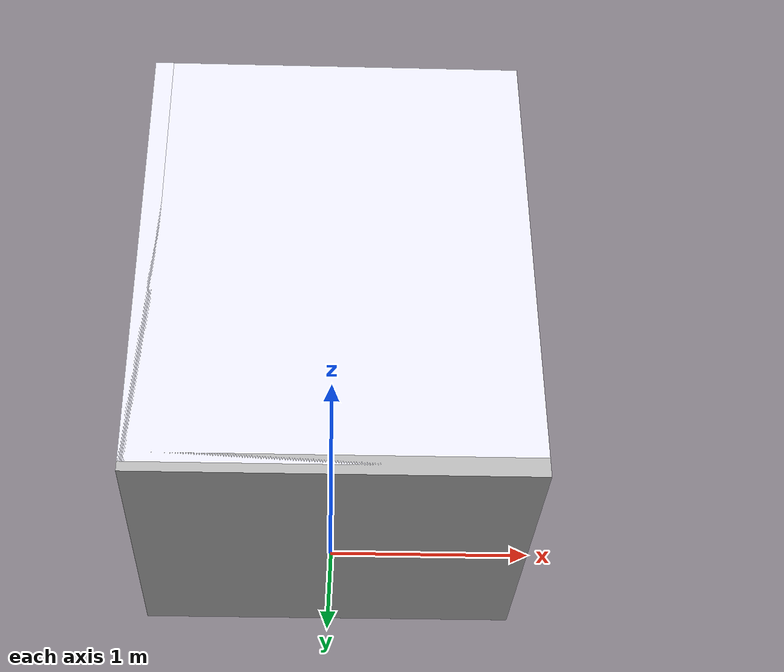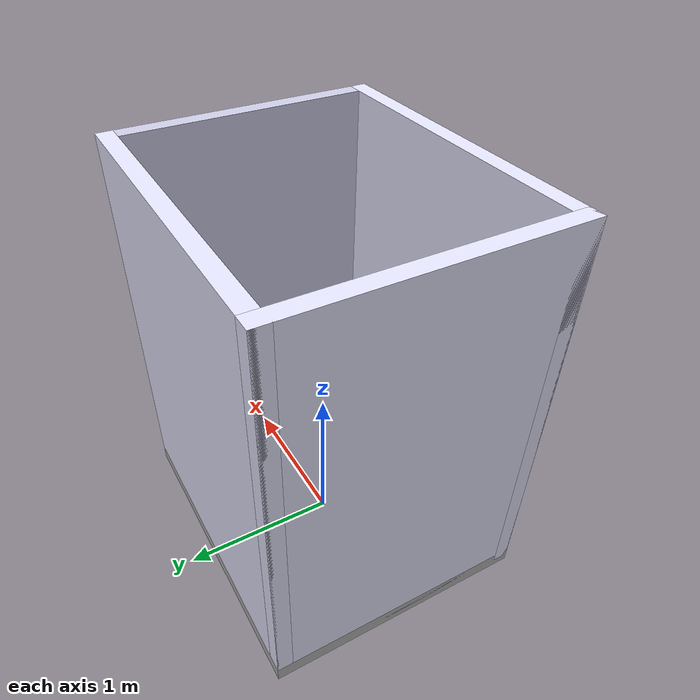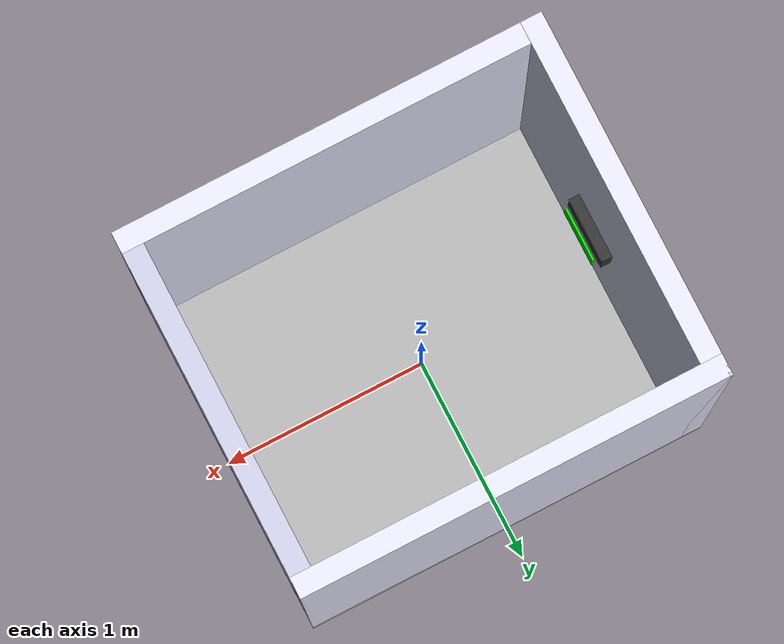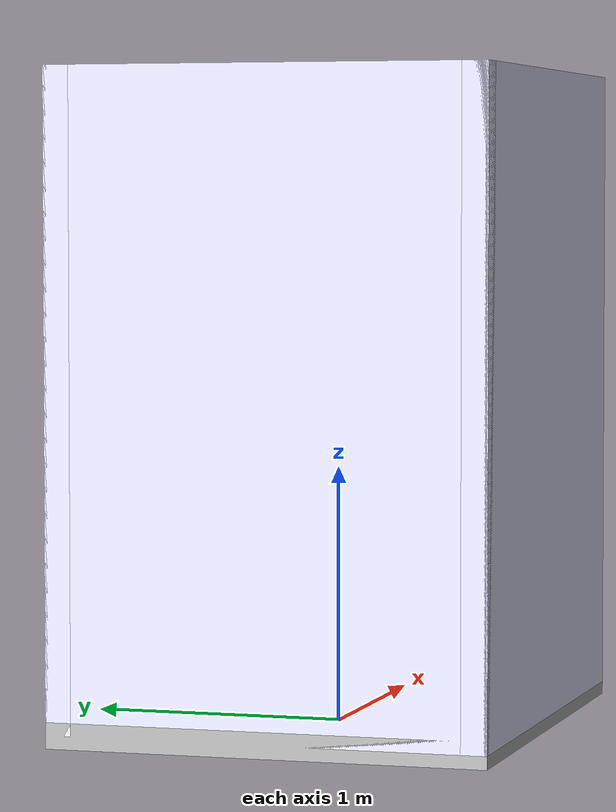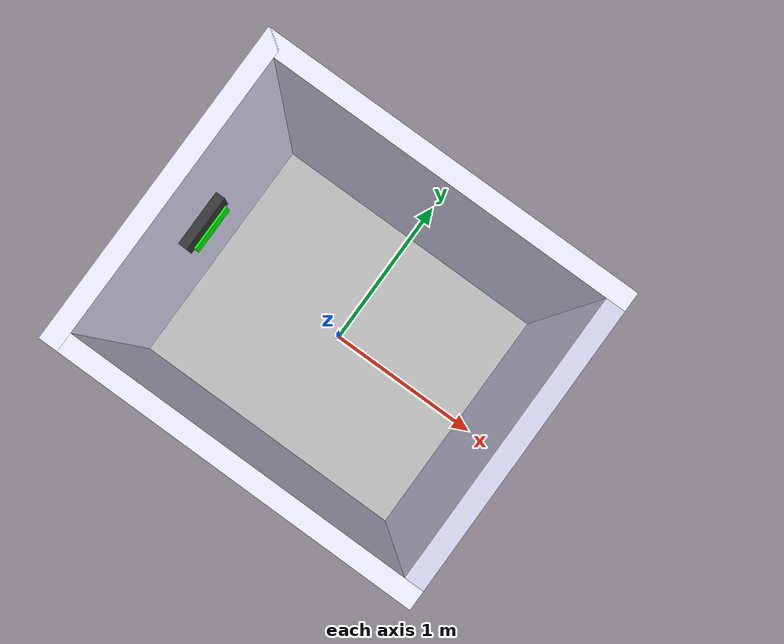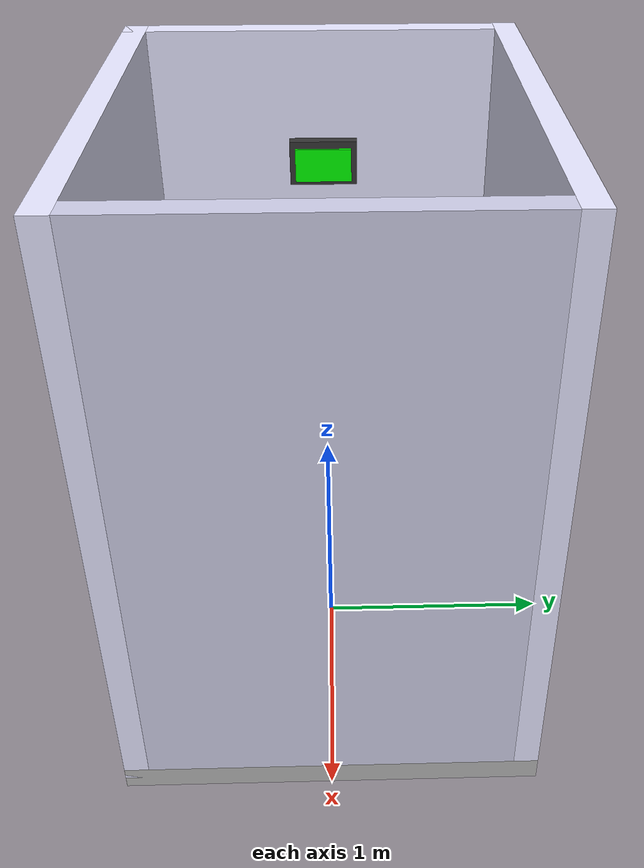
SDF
<?xml version="1.0"?>
<sdf version="1.7">
  <model name="elevator_car">
    <static>false</static>
    <pose>0 0 0 0 0 0</pose>

    <!-- Main Platform -->
    <link name="platform">
      <pose>0 0 0.05 0 0 0</pose>
      <gravity>false</gravity>
      <kinematic>true</kinematic>
      <inertial>
        <mass>500</mass>
        <inertia>
          <ixx>166.67</ixx>
          <ixy>0</ixy>
          <ixz>0</ixz>
          <iyy>208.33</iyy>
          <iyz>0</iyz>
          <izz>375</izz>
        </inertia>
      </inertial>
      <collision name="platform_collision">
        <geometry>
          <box>
            <size>2.0 1.7 0.1</size>
          </box>
        </geometry>
      </collision>
      <visual name="platform_visual">
        <geometry>
          <box>
            <size>2.0 1.7 0.1</size>
          </box>
        </geometry>
        <material>
          <ambient>0.5 0.5 0.5 1</ambient>
          <diffuse>0.7 0.7 0.7 1</diffuse>
          <specular>0.2 0.2 0.2 1</specular>
        </material>
      </visual>
    </link>

    <!-- Back Wall -->
    <link name="back_wall">
      <pose>-0.95 0 1.3 0 0 0</pose>
      <inertial>
        <mass>50</mass>
        <inertia>
          <ixx>20.83</ixx>
          <ixy>0</ixy>
          <ixz>0</ixz>
          <iyy>0.83</iyy>
          <iyz>0</iyz>
          <izz>20</izz>
        </inertia>
      </inertial>
      <collision name="back_wall_collision">
        <geometry>
          <box>
            <size>0.1 1.7 2.5</size>
          </box>
        </geometry>
      </collision>
      <visual name="back_wall_visual">
        <geometry>
          <box>
            <size>0.1 1.7 2.5</size>
          </box>
        </geometry>
        <material>
          <ambient>0.8 0.8 0.9 1</ambient>
          <diffuse>0.9 0.9 1.0 1</diffuse>
          <specular>0.3 0.3 0.3 1</specular>
        </material>
      </visual>
    </link>

    <!-- Left Wall -->
    <link name="left_wall">
      <pose>0 -0.8 1.3 0 0 0</pose>
      <inertial>
        <mass>50</mass>
        <inertia>
          <ixx>0.83</ixx>
          <ixy>0</ixy>
          <ixz>0</ixz>
          <iyy>21.67</iyy>
          <iyz>0</iyz>
          <izz>20.83</izz>
        </inertia>
      </inertial>
      <collision name="left_wall_collision">
        <geometry>
          <box>
            <size>2.0 0.1 2.5</size>
          </box>
        </geometry>
      </collision>
      <visual name="left_wall_visual">
        <geometry>
          <box>
            <size>2.0 0.1 2.5</size>
          </box>
        </geometry>
        <material>
          <ambient>0.8 0.8 0.9 1</ambient>
          <diffuse>0.9 0.9 1.0 1</diffuse>
          <specular>0.3 0.3 0.3 1</specular>
        </material>
      </visual>
    </link>

    <!-- Right Wall -->
    <link name="right_wall">
      <pose>0 0.8 1.3 0 0 0</pose>
      <inertial>
        <mass>50</mass>
        <inertia>
          <ixx>0.83</ixx>
          <ixy>0</ixy>
          <ixz>0</ixz>
          <iyy>21.67</iyy>
          <iyz>0</iyz>
          <izz>20.83</izz>
        </inertia>
      </inertial>
      <collision name="right_wall_collision">
        <geometry>
          <box>
            <size>2.0 0.1 2.5</size>
          </box>
        </geometry>
      </collision>
      <visual name="right_wall_visual">
        <geometry>
          <box>
            <size>2.0 0.1 2.5</size>
          </box>
        </geometry>
        <material>
          <ambient>0.8 0.8 0.9 1</ambient>
          <diffuse>0.9 0.9 1.0 1</diffuse>
          <specular>0.3 0.3 0.3 1</specular>
        </material>
      </visual>
    </link>

    <!-- Single Elevator Door -->
    <link name="elevator_door">
      <pose>0.95 0 1.3 0 0 0</pose>
      <inertial>
        <mass>30</mass>
        <inertia>
          <ixx>15.625</ixx>
          <ixy>0</ixy>
          <ixz>0</ixz>
          <iyy>0.3</iyy>
          <iyz>0</iyz>
          <izz>15.325</izz>
        </inertia>
      </inertial>
      <collision name="door_collision">
        <geometry>
          <box>
            <size>0.1 1.5 2.5</size>
          </box>
        </geometry>
      </collision>
      <visual name="door_visual">
        <geometry>
          <box>
            <size>0.1 1.5 2.5</size>
          </box>
        </geometry>
        <material>
          <ambient>0.7 0.7 0.8 1</ambient>
          <diffuse>0.8 0.8 0.9 1</diffuse>
          <specular>0.4 0.4 0.4 1</specular>
        </material>
      </visual>
    </link>

    <!-- Floor Display -->
    <link name="floor_display">
      <pose>-0.8 0 2.0 0 0 0</pose>
      <inertial>
        <mass>1</mass>
        <inertia>
          <ixx>0.01</ixx>
          <ixy>0</ixy>
          <ixz>0</ixz>
          <iyy>0.01</iyy>
          <iyz>0</iyz>
          <izz>0.01</izz>
        </inertia>
      </inertial>
      <collision name="display_collision">
        <geometry>
          <box>
            <size>0.05 0.3 0.2</size>
          </box>
        </geometry>
      </collision>
      <visual name="display_visual">
        <geometry>
          <box>
            <size>0.05 0.3 0.2</size>
          </box>
        </geometry>
        <material>
          <ambient>0.1 0.1 0.1 1</ambient>
          <diffuse>0.2 0.2 0.2 1</diffuse>
          <specular>0.8 0.8 0.8 1</specular>
        </material>
      </visual>
    </link>

    <!-- Floor Number Text -->
    <link name="floor_number">
      <pose>-0.75 0 2.0 0 0 0</pose>
      <inertial>
        <mass>0.1</mass>
        <inertia>
          <ixx>0.001</ixx>
          <ixy>0</ixy>
          <ixz>0</ixz>
          <iyy>0.001</iyy>
          <iyz>0</iyz>
          <izz>0.001</izz>
        </inertia>
      </inertial>
      <visual name="floor_number_visual">
        <geometry>
          <box>
            <size>0.01 0.25 0.15</size>
          </box>
        </geometry>
        <material>
          <ambient>0 1 0 1</ambient>
          <diffuse>0 1 0 1</diffuse>
          <specular>0.5 0.5 0.5 1</specular>
        </material>
      </visual>
    </link>

    <!-- Joints -->

    <!-- Platform joints to walls -->
    <joint name="platform_to_back_wall" type="fixed">
      <parent>platform</parent>
      <child>back_wall</child>
    </joint>

    <joint name="platform_to_left_wall" type="fixed">
      <parent>platform</parent>
      <child>left_wall</child>
    </joint>

    <joint name="platform_to_right_wall" type="fixed">
      <parent>platform</parent>
      <child>right_wall</child>
    </joint>

    <!-- Single Door Joint (slides sideways) -->
    <joint name="door_joint" type="prismatic">
      <parent>platform</parent>
      <child>elevator_door</child>
      <axis>
        <xyz>0 1 0</xyz>
        <limit>
          <lower>-1.4</lower>  <!-- Slides 1.2m to the left -->
          <upper>1.4</upper>
          <effort>500</effort>
          <velocity>0.3</velocity>
        </limit>
        <dynamics>
          <damping>5.0</damping>
          <friction>0.0</friction>
        </dynamics>
      </axis>
    </joint>

    <!-- Display joints -->
    <joint name="platform_to_display" type="fixed">
      <parent>platform</parent>
      <child>floor_display</child>
    </joint>

    <joint name="display_to_number" type="fixed">
      <parent>floor_display</parent>
      <child>floor_number</child>
    </joint>
    <!-- Plugin placeholder (will be added by launch file) -->

  </model>
</sdf>
